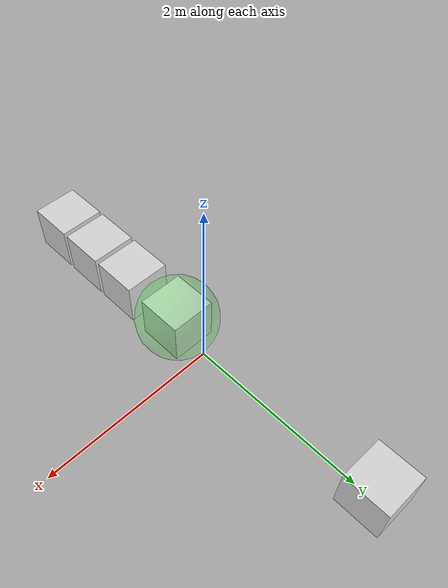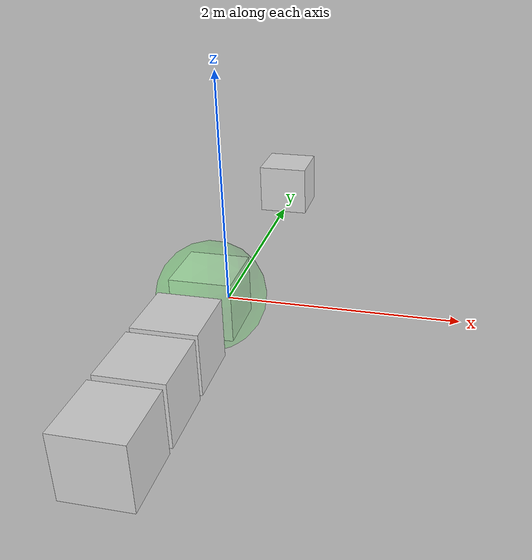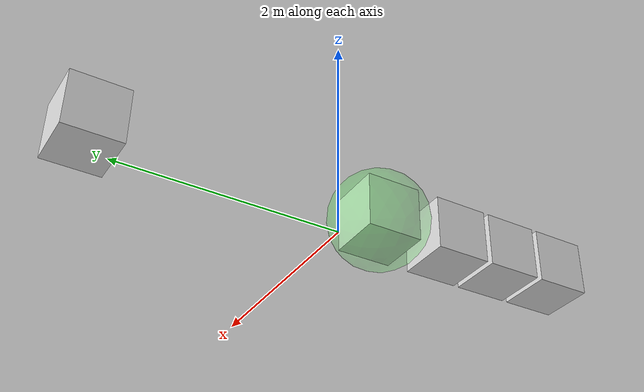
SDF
<?xml version="1.0" ?>
<sdf version="1.6">
  <model name="trap_cont_4_a_3">
    <static>false</static>

    <include>
      <name>normal_cue_0</name>
      <uri>model://vis_cue_normal</uri>
      <pose>0 -2.20 0.25 0 0 0</pose>
    </include>
    <include>
      <name>normal_cue_1</name>
      <uri>model://vis_cue_normal</uri>
      <pose>0 -1.65 0.25 0 0 0</pose>
    </include>
    <include>
      <name>normal_cue_2</name>
      <uri>model://vis_cue_normal</uri>
      <pose>0 -1.1 0.25 0 0 0</pose>
    </include>
    <include>
      <name>op_r</name>
      <uri>model://vis_cue_attract</uri>
      <pose>0 -0.4 0.25 0 0 0</pose>
    </include>
    <include>
      <name>op_l</name>
      <uri>model://vis_cue_normal</uri>
      <pose>0 2.2 0.25 0 0 0</pose>
    </include>

  </model>
</sdf>

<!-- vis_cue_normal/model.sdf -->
<sdf version="1.6">
  <model name="vis_cue_normal">
    <static>false</static>
    <pose>0 0 0.25 0 0 0</pose>
    <link name='vis_cue_normal'>
      <inertial>
        <mass>1</mass>
        <inertia>
          <ixx>0.166667</ixx>
          <ixy>0</ixy>
          <ixz>0</ixz>
          <iyy>0.166667</iyy>
          <iyz>0</iyz>
          <izz>0.166667</izz>
        </inertia>
      </inertial>
      <collision name='collision'>
        <geometry>
          <box>
            <size>0.5 0.5 0.5</size>
          </box>
        </geometry>
        <max_contacts>10</max_contacts>
        <surface>
          <contact>
            <ode/>
          </contact>
          <bounce/>
          <friction>
            <torsional>
              <ode/>
            </torsional>
            <ode/>
          </friction>
        </surface>
      </collision>
      <visual name='box_visual'>
        <geometry>
          <box>
            <size>0.5 0.5 0.5</size>
          </box>
        </geometry>
        <material>
          <ambient>0.85 0.85 0.85 1</ambient>
          <diffuse>0.85 0.85 0.85 1</diffuse>
          <specular>0.15 0.15 0.15 1</specular>
          <emissive>0 0 0 0</emissive>
        </material>
      </visual>
      <self_collide>0</self_collide>
      <kinematic>0</kinematic>
    </link>
  </model>
</sdf>

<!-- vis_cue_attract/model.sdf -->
<sdf version="1.6">
  <model name="vis_cue_attract">
    <static>false</static>
    <pose>0 0 0.25 0 0 0</pose>
    <link name='vis_cue_attract'>
      <inertial>
        <mass>1</mass>
        <inertia>
          <ixx>0.166667</ixx>
          <ixy>0</ixy>
          <ixz>0</ixz>
          <iyy>0.166667</iyy>
          <iyz>0</iyz>
          <izz>0.166667</izz>
        </inertia>
      </inertial>
      <collision name='collision'>
        <geometry>
          <box>
            <size>0.5 0.5 0.5</size>
          </box>
        </geometry>
        <max_contacts>10</max_contacts>
        <surface>
          <contact>
            <ode/>
          </contact>
          <bounce/>
          <friction>
            <torsional>
              <ode/>
            </torsional>
            <ode/>
          </friction>
        </surface>
      </collision>
      <visual name='box_visual'>
        <geometry>
          <box>
            <size>0.5 0.5 0.5</size>
          </box>
        </geometry>
        <material>
          <ambient>0.85 0.85 0.85 1</ambient>
          <diffuse>0.85 0.85 0.85 1</diffuse>
          <specular>0.15 0.15 0.15 1</specular>
          <emissive>0 0 0 0</emissive>
        </material>
      </visual>
      <visual name='cue_visual'>
        <geometry>
          <mesh>
            <uri>model://vis_cue_attract/meshes/sphere.stl</uri>
            <scale>0.9 0.9 0.9</scale>
          </mesh>
        </geometry>
        <material>
          <ambient>0 1 0 0.10</ambient>
          <diffuse>0 1 0 0.20</diffuse>
          <specular>0 1 0 0.20</specular>
          <emissive>0 1 0 0.1</emissive>
        </material>
      </visual>
      <self_collide>0</self_collide>
      <kinematic>0</kinematic>
    </link>
  </model>
</sdf>
